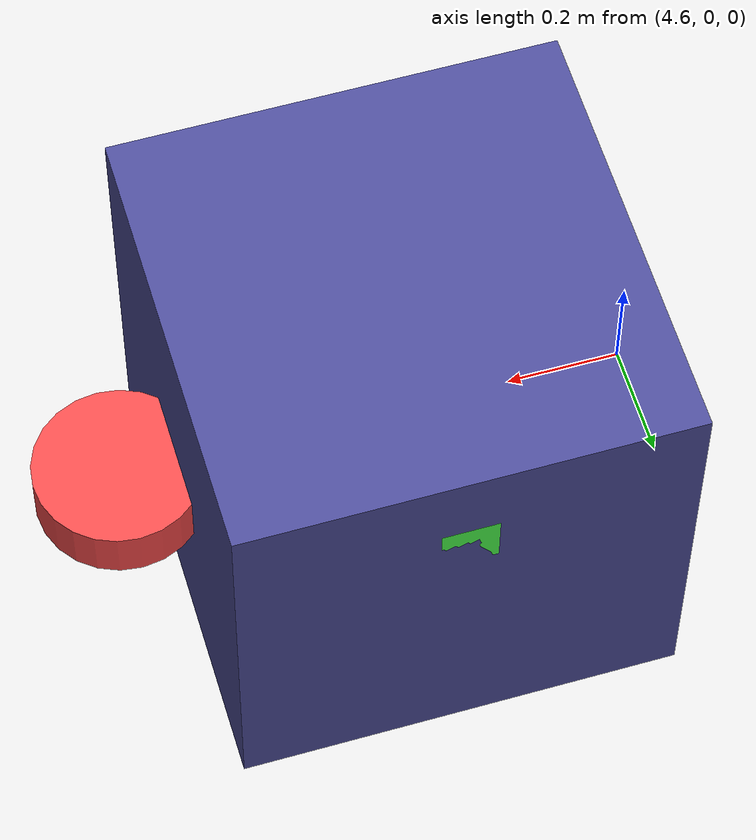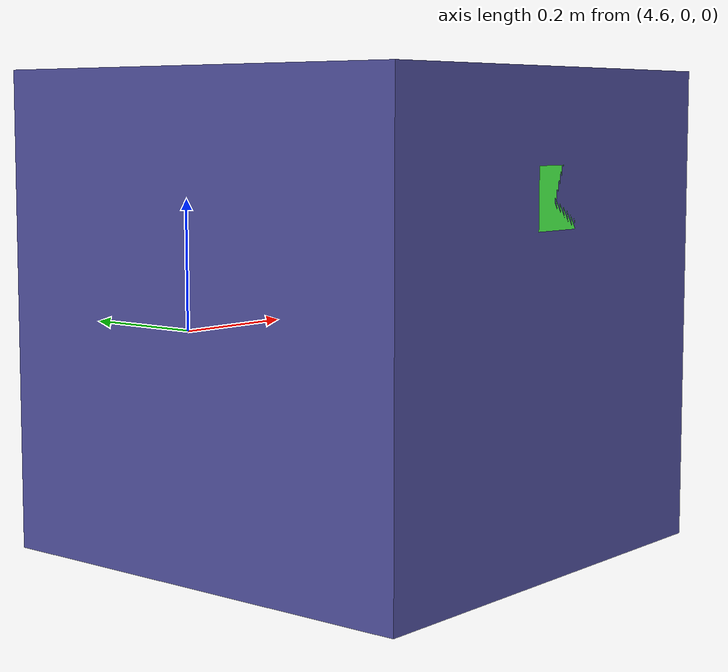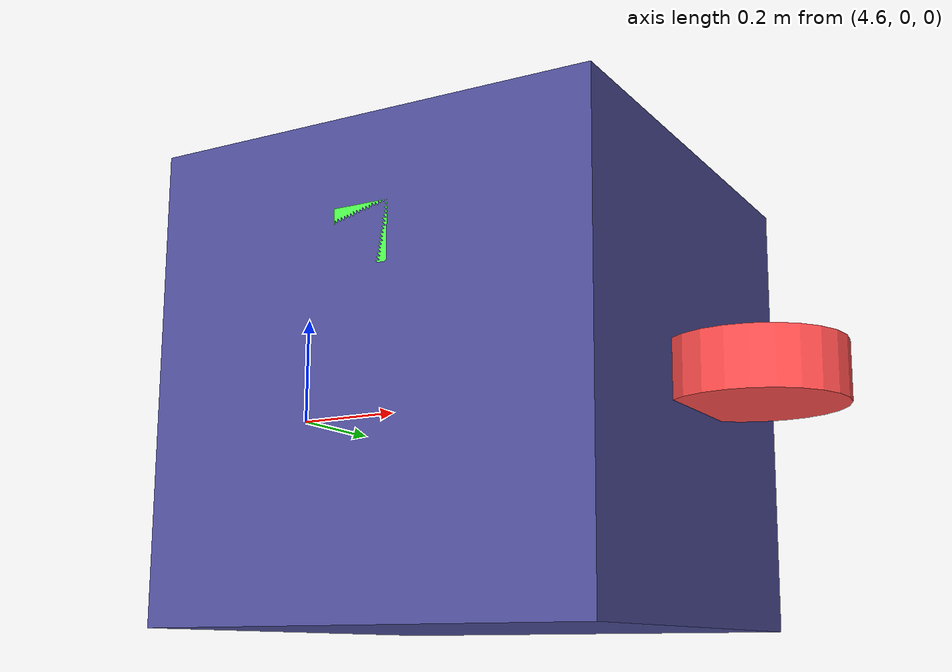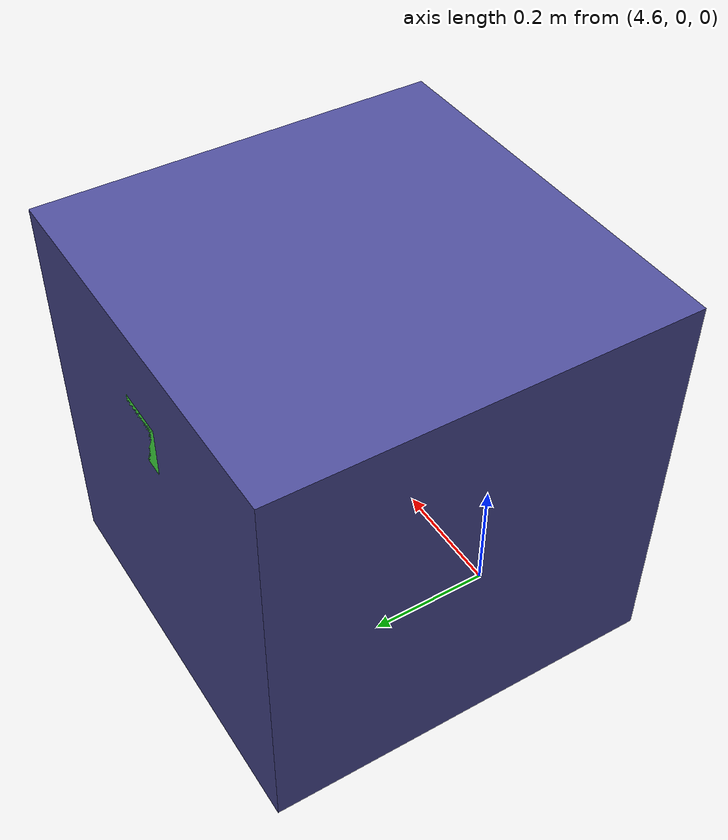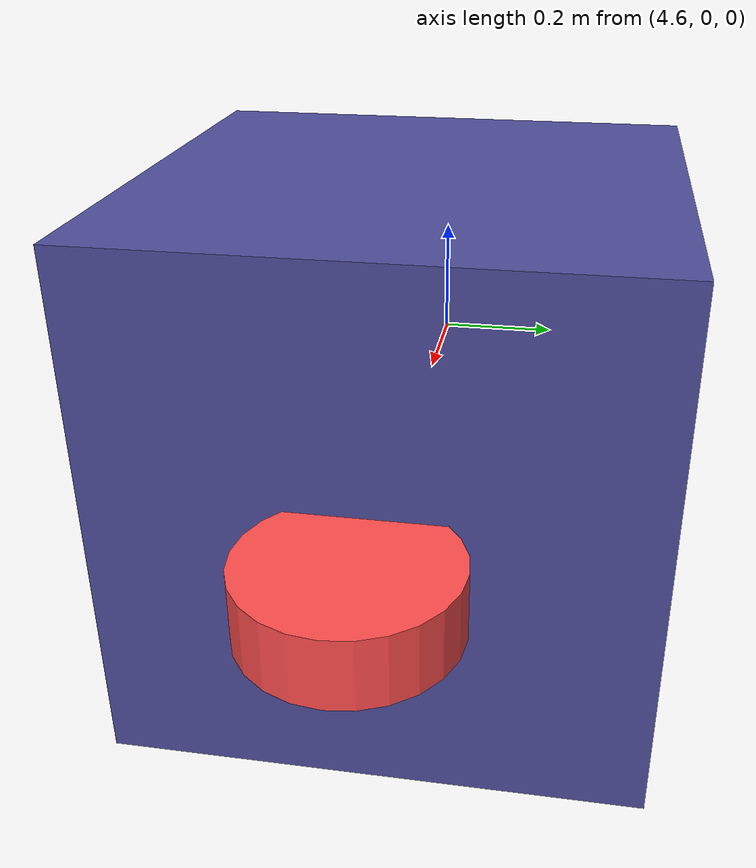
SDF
<?xml version="1.0"?>
<sdf version="1.9">
  <model name="astro_dock">
    <pose>5 0 0 0 0 0</pose> <!-- Positioned 5m away from origin -->

    <!-- Main dock body -->
    <link name="dock_body">
      <inertial>
        <pose>0 0 0 0 0 0</pose>
        <mass>15.0</mass>
        <inertia>
          <ixx>0.5</ixx>
          <ixy>0</ixy>
          <ixz>0</ixz>
          <iyy>0.5</iyy>
          <iyz>0</iyz>
          <izz>0.5</izz>
        </inertia>
      </inertial>

      <collision name="collision">
        <geometry>
          <box>
            <size>0.8 0.8 0.8</size>
          </box>
        </geometry>
        <surface>
          <contact>
            <ode/>
          </contact>
        </surface>
      </collision>

      <visual name="visual">
        <geometry>
          <box>
            <size>0.8 0.8 0.8</size>
          </box>
        </geometry>
        <material>
          <ambient>0.1 0.1 0.2 1</ambient>
          <diffuse>0.3 0.3 0.6 1</diffuse>
          <specular>0.1 0.1 0.1 1</specular>
          <emissive>0.05 0.05 0.1 1</emissive>
        </material>
      </visual>
    </link>

    <!-- Docking port - visual target for the main satellite -->
    <link name="docking_port">
      <inertial>
        <mass>0.1</mass>
        <inertia>
          <ixx>0.001</ixx><ixy>0</ixy><ixz>0</ixz>
          <iyy>0.001</iyy><iyz>0</iyz>
          <izz>0.001</izz>
        </inertia>
      </inertial>
      <pose>0.5 0 0 0 0 0</pose> <!-- Extended from dock body -->
      <visual name="port_visual">
        <geometry>
          <cylinder>
            <radius>0.15</radius>
            <length>0.1</length>
          </cylinder>
        </geometry>
        <material>
          <ambient>0.8 0.2 0.2 1</ambient>
          <diffuse>1.0 0.3 0.3 1</diffuse>
          <specular>0.1 0.1 0.1 1</specular>
          <emissive>0.1 0.02 0.02 1</emissive>
        </material>
      </visual>
    </link>
    <joint name="docking_port_joint" type="fixed">
      <parent>dock_body</parent>
      <child>docking_port</child>
    </joint>

    <!-- Battery slot 1 -->
    <link name="battery_slot_1">
      <inertial>
        <mass>0.5</mass>
        <inertia>
          <ixx>0.01</ixx><ixy>0</ixy><ixz>0</ixz>
          <iyy>0.01</iyy><iyz>0</iyz>
          <izz>0.01</izz>
        </inertia>
      </inertial>
      <pose>0 0.3 0.2 0 0 0</pose>
      <visual name="battery_1_visual">
        <geometry>
          <box>
            <size>0.1 0.2 0.1</size>
          </box>
        </geometry>
        <material>
          <ambient>0.2 0.8 0.2 1</ambient>
          <diffuse>0.3 1.0 0.3 1</diffuse>
          <specular>0.1 0.1 0.1 1</specular>
          <emissive>0.02 0.08 0.02 1</emissive>
        </material>
      </visual>
    </link>
    <joint name="battery_slot_1_joint" type="fixed">
      <parent>dock_body</parent>
      <child>battery_slot_1</child>
    </joint>

    <!-- Battery slot 2 -->
    <link name="battery_slot_2">
      <inertial>
        <mass>0.5</mass>
        <inertia>
          <ixx>0.01</ixx><ixy>0</ixy><ixz>0</ixz>
          <iyy>0.01</iyy><iyz>0</iyz>
          <izz>0.01</izz>
        </inertia>
      </inertial>
      <pose>0 -0.3 0.2 0 0 0</pose>
      <visual name="battery_2_visual">
        <geometry>
          <box>
            <size>0.1 0.2 0.1</size>
          </box>
        </geometry>
        <material>
          <ambient>0.2 0.8 0.2 1</ambient>
          <diffuse>0.3 1.0 0.3 1</diffuse>
          <specular>0.1 0.1 0.1 1</specular>
          <emissive>0.02 0.08 0.02 1</emissive>
        </material>
      </visual>
    </link>
    <joint name="battery_slot_2_joint" type="fixed">
      <parent>dock_body</parent>
      <child>battery_slot_2</child>
    </joint>

    <allow_auto_disable>false</allow_auto_disable>
    <static>true</static> <!-- Target is stationary -->
  </model>
</sdf>
